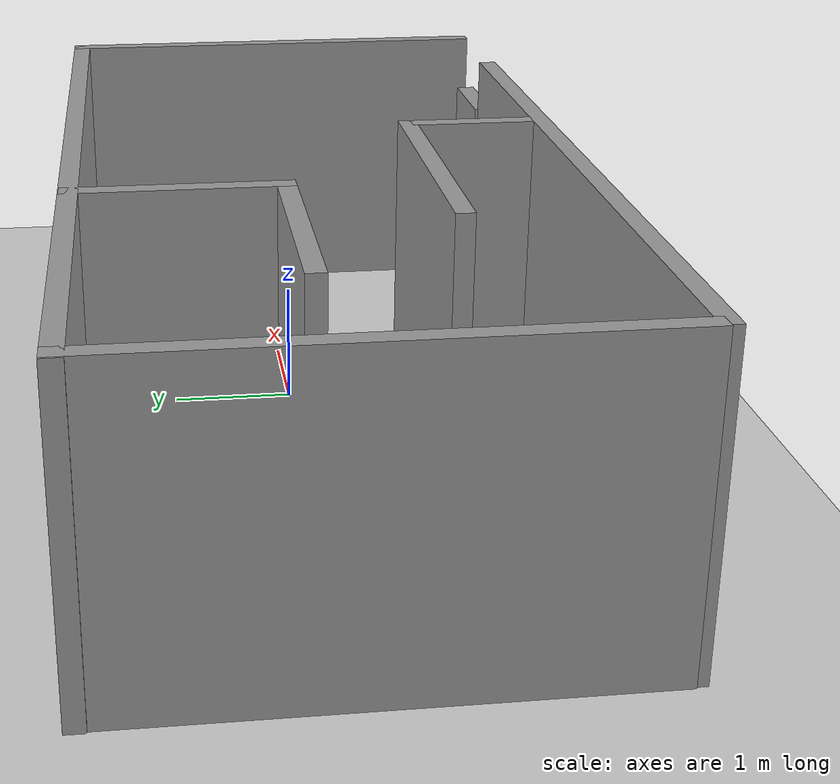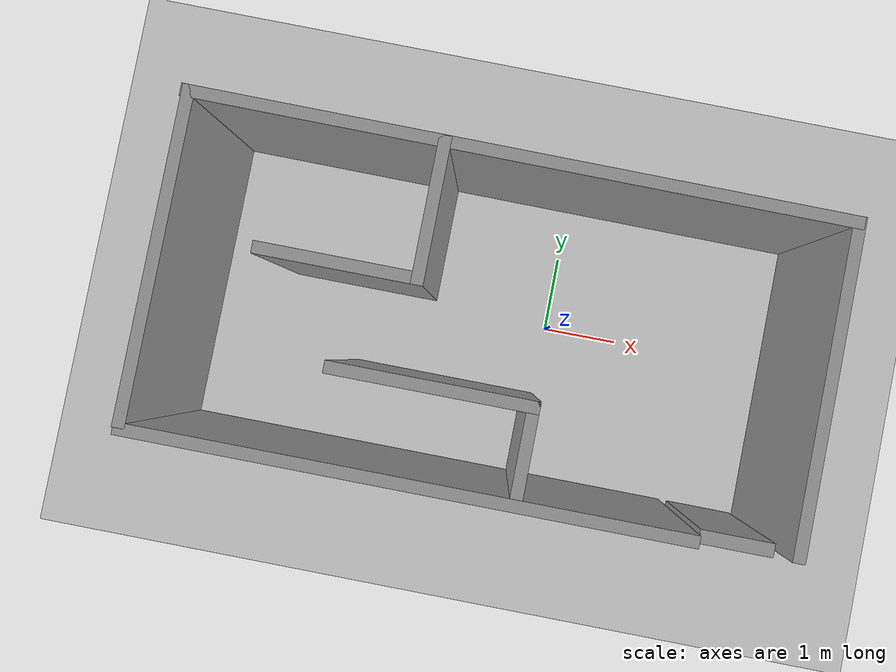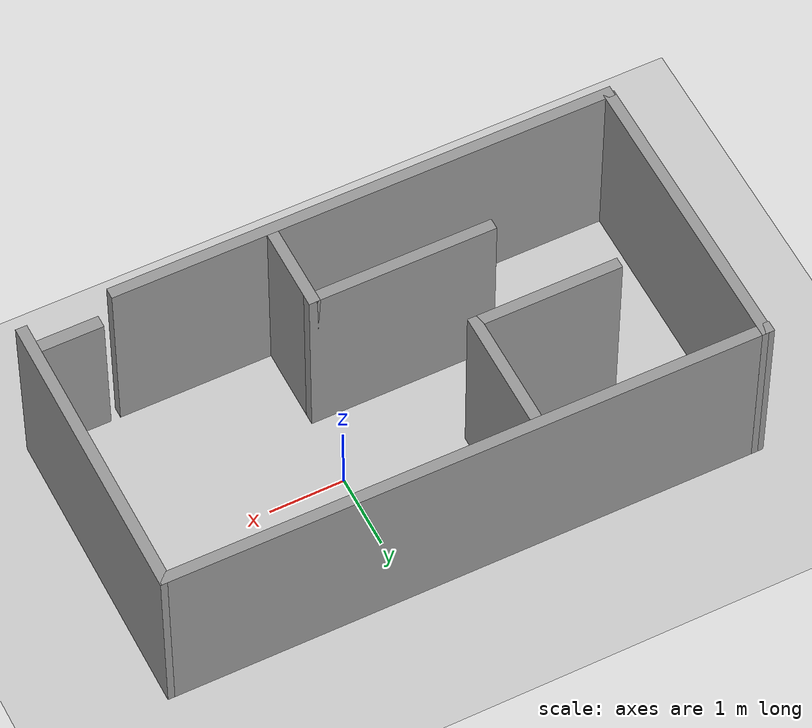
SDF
<sdf version="1.7">
 <world name="default">
  <light name="sun" type="directional">
   <pose>0 0 10 0 -0 0</pose>
   <diffuse>0.8 0.8 0.8 1</diffuse>
   <specular>0.2 0.2 0.2 1</specular>
   <attenuation>
    <range>1000</range>
    <constant>0.9</constant>
    <linear>0.01</linear>
    <quadratic>0.001</quadratic>
   </attenuation>
   <direction>-0.5 0.1 -0.9</direction>
   <spot><inner_angle>0</inner_angle><outer_angle>0</outer_angle><falloff>0</falloff></spot>
  </light>
  <model name="ground_plane">
   <static>1</static>
   <link name="link">
    <collision name="collision">
     <geometry><plane><normal>0 0 1</normal><size>100 100</size></plane></geometry>
     <surface>
      <contact><collide_bitmask>65535</collide_bitmask></contact>
      <friction><ode><mu>100</mu><mu2>50</mu2></ode></friction>
     </surface>
    </collision>
    <visual name="visual">
     <cast_shadows>0</cast_shadows>
     <geometry><plane><normal>0 0 1</normal><size>100 100</size></plane></geometry>
     <material>
      <script><uri>file://media/materials/scripts/gazebo.material</uri><name>Gazebo/Grey</name></script>
     </material>
    </visual>
   </link>
  </model>
  <gravity>0 0 -9.8</gravity>
  <magnetic_field>6e-06 2.3e-05 -4.2e-05</magnetic_field>
  <atmosphere type="adiabatic"/>
  <physics type="ode">
   <max_step_size>0.001</max_step_size>
   <real_time_factor>1</real_time_factor>
   <real_time_update_rate>1000</real_time_update_rate>
  </physics>
  <scene><ambient>0.4 0.4 0.4 1</ambient><background>0.7 0.7 0.7 1</background><shadows>1</shadows></scene>
  <spherical_coordinates>
   <surface_model>EARTH_WGS84</surface_model>
   <latitude_deg>0</latitude_deg>
   <longitude_deg>0</longitude_deg>
   <elevation>0</elevation>
   <heading_deg>0</heading_deg>
  </spherical_coordinates>
  <model name="plateforme_LIFE">
   <pose>-0.767698 -0.174981 0 0 -0 0</pose>
   <link name="Door_0">
    <collision name="Door_0_Collision">
     <geometry><box><size>0.9 0.17 2</size></box></geometry>
     <pose>0 0 1 0 -0 0</pose>
    </collision>
    <visual name="Door_0_Visual">
     <pose>0 0 1 0 -0 0</pose>
     <geometry><box><size>0.9 0.17 2</size></box></geometry>
     <material>
      <script><uri>file://media/materials/scripts/gazebo.material</uri><name>Gazebo/Grey</name></script>
     </material>
    </visual>
    <pose>3.35878 -1.97852 0 0 -0 0</pose>
   </link>
   <link name="Wall_0">
    <collision name="Wall_0_Collision">
     <geometry><box><size>6.75 0.15 2.5</size></box></geometry>
     <pose>0 0 1.25 0 -0 0</pose>
    </collision>
    <visual name="Wall_0_Visual">
     <pose>0 0 1.25 0 -0 0</pose>
     <geometry><box><size>6.75 0.15 2.5</size></box></geometry>
     <material>
      <script><uri>file://media/materials/scripts/gazebo.material</uri><name>Gazebo/Grey</name></script>
      <ambient>1 1 1 1</ambient>
     </material>
     <meta><layer>0</layer></meta>
    </visual>
    <pose>-0.589743 -1.96728 0 0 -0 3.14159</pose>
   </link>
   <link name="Wall_12">
    <collision name="Wall_12_Collision">
     <geometry><box><size>2 0.15 2.5</size></box></geometry>
     <pose>0 0 1.25 0 -0 0</pose>
    </collision>
    <visual name="Wall_12_Visual">
     <pose>0 0 1.25 0 -0 0</pose>
     <geometry><box><size>2 0.15 2.5</size></box></geometry>
     <material>
      <script><uri>file://media/materials/scripts/gazebo.material</uri><name>Gazebo/Grey</name></script>
      <ambient>1 1 1 1</ambient>
     </material>
     <meta><layer>0</layer></meta>
    </visual>
    <pose>-1.83014 0.348417 0 0 -0 0</pose>
   </link>
   <link name="Wall_13">
    <collision name="Wall_13_Collision">
     <geometry><box><size>1.75 0.15 2.5</size></box></geometry>
     <pose>0 0 1.25 0 -0 0</pose>
    </collision>
    <visual name="Wall_13_Visual">
     <pose>0 0 1.25 0 -0 0</pose>
     <geometry><box><size>1.75 0.15 2.5</size></box></geometry>
     <material>
      <script><uri>file://media/materials/scripts/gazebo.material</uri><name>Gazebo/Grey</name></script>
      <ambient>1 1 1 1</ambient>
     </material>
     <meta><layer>0</layer></meta>
    </visual>
    <pose>-0.905138 1.14842 0 0 -0 1.5708</pose>
   </link>
   <link name="Wall_15">
    <collision name="Wall_15_Collision">
     <geometry><box><size>1.25 0.15 2.5</size></box></geometry>
     <pose>0 0 1.25 0 -0 0</pose>
    </collision>
    <visual name="Wall_15_Visual">
     <pose>0 0 1.25 0 -0 0</pose>
     <geometry><box><size>1.25 0.15 2.5</size></box></geometry>
     <material>
      <script><uri>file://media/materials/scripts/gazebo.material</uri><name>Gazebo/Grey</name></script>
      <ambient>1 1 1 1</ambient>
     </material>
     <meta><layer>0</layer></meta>
    </visual>
    <pose>0.66683 -1.3829 0 0 -0 1.5708</pose>
   </link>
   <link name="Wall_16">
    <collision name="Wall_16_Collision">
     <geometry><box><size>2.5 0.15 2.5</size></box></geometry>
     <pose>0 0 1.25 0 -0 0</pose>
    </collision>
    <visual name="Wall_16_Visual">
     <pose>0 0 1.25 0 -0 0</pose>
     <geometry><box><size>2.5 0.15 2.5</size></box></geometry>
     <material>
      <script><uri>file://media/materials/scripts/gazebo.material</uri><name>Gazebo/Grey</name></script>
      <ambient>1 1 1 1</ambient>
     </material>
     <meta><layer>0</layer></meta>
    </visual>
    <pose>-0.50817 -0.832896 0 0 -0 3.14159</pose>
   </link>
   <link name="Wall_5">
    <collision name="Wall_5_Collision">
     <geometry><box><size>4 0.15 2.5</size></box></geometry>
     <pose>0 0 1.25 0 -0 0</pose>
    </collision>
    <visual name="Wall_5_Visual">
     <pose>0 0 1.25 0 -0 0</pose>
     <geometry><box><size>4 0.15 2.5</size></box></geometry>
     <material>
      <script><uri>file://media/materials/scripts/gazebo.material</uri><name>Gazebo/Grey</name></script>
      <ambient>1 1 1 1</ambient>
     </material>
     <meta><layer>0</layer></meta>
    </visual>
    <pose>-3.90532 0.041985 0 0 -0 -1.5708</pose>
   </link>
   <link name="Wall_7">
    <collision name="Wall_7_Collision">
     <geometry><box><size>7.9762 0.15 2.5</size></box></geometry>
     <pose>0 0 1.25 0 -0 0</pose>
    </collision>
    <visual name="Wall_7_Visual">
     <pose>0 0 1.25 0 -0 0</pose>
     <geometry><box><size>7.9762 0.15 2.5</size></box></geometry>
     <material>
      <script><uri>file://media/materials/scripts/gazebo.material</uri><name>Gazebo/Grey</name></script>
      <ambient>1 1 1 1</ambient>
     </material>
     <meta><layer>0</layer></meta>
    </visual>
    <pose>-0.007459 1.95178 0 0 -0 -0.003887</pose>
   </link>
   <link name="Wall_8">
    <collision name="Wall_8_Collision">
     <geometry><box><size>4 0.15 2.5</size></box></geometry>
     <pose>0 0 1.25 0 -0 0</pose>
    </collision>
    <visual name="Wall_8_Visual">
     <pose>0 0 1.25 0 -0 0</pose>
     <geometry><box><size>4 0.15 2.5</size></box></geometry>
     <material>
      <script><uri>file://media/materials/scripts/gazebo.material</uri><name>Gazebo/Grey</name></script>
      <ambient>1 1 1 1</ambient>
     </material>
     <meta><layer>0</layer></meta>
    </visual>
    <pose>3.92082 0.011568 0 0 -0 -1.5708</pose>
   </link>
   <static>1</static>
  </model>
 </world>
</sdf>
